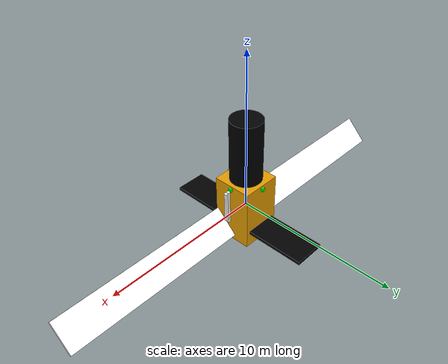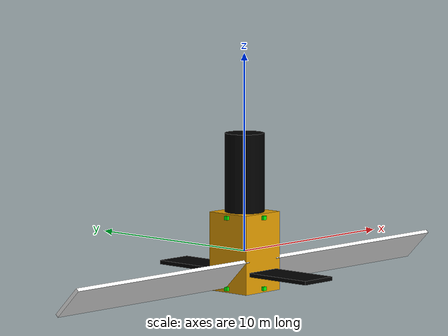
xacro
<?xml version="1.0" encoding="utf-8"?>
<robot name="satellite" xmlns:xacro="http://www.ros.org/wiki/xacro">
    <material name="blue">
        <color rgba="0 0 0.8 1"/>
    </material>

    <material name="black">
        <color rgba="0 0 0 1"/>
    </material>

    <material name="green">
        <color rgba="0 1 0 1"/>
    </material>

    <material name="white">
        <color rgba="1 1 1 1"/>
    </material>

    <xacro:property name="base_mass" value="60" />
    <xacro:property name="base_w" value="2" />
    <xacro:property name="base_l" value="2" />
    <xacro:property name="base_h" value="4" />
    <xacro:property name="arm_segment_length" value="2" />
    <xacro:property name="arm_segment_mass" value="10" />

    <!-- links -->
    <link name="base_link">
        <inertial>
            <mass value="${base_mass}"/>
            <origin xyz="0 0 0"/>
            <inertia
                ixx="${base_mass * 2.5 * 2.5 * 2/5}"
                ixy="0.0" ixz="0.0"
                iyy="${base_mass * 2.5 * 2.5 * 2/5}"
                iyz="0.0"
                izz="${base_mass * 4 * 4 * 2/5}"
            />
        </inertial>

        <visual>
            <geometry>
                <box size="2.5 2.5 4"/>
            </geometry>
        </visual>

    </link>

    <!-- antenna and communication arrays -->
    <link name="front">
        <visual>
            <geometry>
                <cylinder length="4" radius="1"/>
            </geometry>

            <origin rpy="0 0 0" xyz="0 0 2"/>
            <material name="black"/>
        </visual>

        <inertial>
            <mass value="1e-12"/>
            <origin xyz="0 0 0"/>
            <inertia ixx="1e-12" ixy="0.0" ixz="0.0" iyy="1e-12" iyz="0.0" izz="1e-12"/>
        </inertial>
    </link>

    <link name="left_array">
        <visual>
            <geometry>
                <box size="12 0.2 2"/>
            </geometry>

            <origin rpy="0.785 0 0" xyz="-6 0 0"/>
            <material name="white"/>
        </visual>

        <inertial>
            <mass value="1e-12"/>
            <origin xyz="0 0 0"/>
            <inertia ixx="1e-12" ixy="0.0" ixz="0.0" iyy="1e-12" iyz="0.0" izz="1e-12"/>
        </inertial>
    </link>

    <link name="right_array">
        <visual>
            <geometry>
                <box size="12 0.2 2"/>
            </geometry>

            <origin rpy="0.785 0 0" xyz="6 0 0"/>
            <material name="white"/>
        </visual>

        <inertial>
            <mass value="1e-12"/>
            <origin xyz="0 0 0"/>
            <inertia ixx="1e-12" ixy="0.0" ixz="0.0" iyy="1e-12" iyz="0.0" izz="1e-12"/>
        </inertial>
    </link>

    <link name="top_array">
        <visual>
            <geometry>
                <box size="2 4 0.2"/>
            </geometry>

            <origin rpy="0 0 0" xyz="0 2 0"/>
            <material name="black"/>
        </visual>

        <inertial>
            <mass value="1e-12"/>
            <origin xyz="0 0 0"/>
            <inertia ixx="1e-12" ixy="0.0" ixz="0.0" iyy="1e-12" iyz="0.0" izz="1e-12"/>
        </inertial>
    </link>

    <link name="bot_array">
        <visual>
            <geometry>
                <box size="2 4 0.2"/>
            </geometry>

            <origin rpy="0 0 0" xyz="0 -2 0"/>
            <material name="black"/>
        </visual>

        <inertial>
            <mass value="1e-12"/>
            <origin xyz="0 0 0"/>
            <inertia ixx="1e-12" ixy="0.0" ixz="0.0" iyy="1e-12" iyz="0.0" izz="1e-12"/>
        </inertial>
    </link>

    <!-- thrusters -->
    <xacro:macro name="thruster" params="name origin">
        <link name="thruster_${name}">
            <visual>
                <geometry>
                    <box size="0.2 0.2 0.2"/>
                </geometry>

                <origin rpy="0 0 0" xyz="0 0 0"/>
                <material name="green"/>
            </visual>

            <inertial>
                <mass value="0.001"/>
                <inertia ixx="1e-3" ixy="0.0" ixz="0.0" iyy="1e-3" iyz="0.0" izz="1e-3"/>
            </inertial>
        </link>

        <!-- Prismatic joints with no effort so pinocchio recognizes
            them as controllable joints.
         -->
        <joint name="base_to_thruster_${name}" type="fixed">

            <parent link="base_link"/>
            <child link="thruster_${name}"/>
            <origin xyz="${origin}"/>
        </joint>
    </xacro:macro>

    <xacro:thruster name="bot" origin="0 0 -2"/>
    <xacro:thruster name="bot_1" origin="0 -1.3 -1.8"/>
    <xacro:thruster name="bot_2" origin="-1.3 0 -1.8"/>
    <xacro:thruster name="bot_3" origin="0 1.3 -1.8"/>
    <xacro:thruster name="bot_4" origin="1.3 0 -1.8"/>

    <xacro:thruster name="top" origin="0 0 2"/>
    <xacro:thruster name="top_1" origin="0 -1.3 1.8"/>
    <xacro:thruster name="top_2" origin="-1.3 0 1.8"/>
    <xacro:thruster name="top_3" origin="0 1.3 1.8"/>
    <xacro:thruster name="top_4" origin="1.3 0 1.8"/>

    <!-- joints -->
    <joint name="base_to_front" type="fixed">
        <parent link="base_link"/>
        <child link="front"/>
        <origin xyz="0 0 2"/>
    </joint>

    <joint name="base_to_left_array" type="fixed">
        <parent link="base_link"/>
        <child link="left_array"/>
        <origin xyz="-1 -0.5 -1"/>
    </joint>

    <joint name="base_to_right_array" type="fixed">
        <parent link="base_link"/>
        <child link="right_array"/>
        <origin xyz="1 -0.5 -1"/>
    </joint>

    <joint name="base_to_top_array" type="fixed">
        <parent link="base_link"/>
        <child link="top_array"/>
        <origin xyz="0 1 -1"/>
    </joint>

    <joint name="base_to_bot_array" type="fixed">
        <parent link="base_link"/>
        <child link="bot_array"/>
        <origin xyz="0 -1 -1"/>
    </joint>

    <!-- arm -->
    <link name="arm_one">
        <visual>
            <geometry>
                <cylinder length="0.5" radius="0.1"/>
            </geometry>

            <origin rpy="0 0 0" xyz="0 0 0"/>
            <material name="white"/>
        </visual>

        <inertial>
            <mass value="0"/>
            <origin xyz="0 0 0"/>
            <inertia
                ixx="0"
                ixy="0.0" ixz="0.0"
                iyy="0"
                iyz="0.0"
                izz="0"
            />
        </inertial>
    </link>

    <link name="arm_two">
        <visual>
            <geometry>
                <cylinder length="${arm_segment_length}" radius="0.1"/>
            </geometry>

            <origin rpy="0 0 0" xyz="0 0 1"/>
            <material name="white"/>
        </visual>

        <inertial>
            <mass value="${arm_segment_mass}"/>
            <origin xyz="0 0 0"/>
            <inertia
                ixx="${1/3 * arm_segment_mass * arm_segment_length * arm_segment_length}"
                ixy="0.0" ixz="0.0"
                iyy="0"
                iyz="0.0"
                izz="${1/3 * arm_segment_mass * arm_segment_length * arm_segment_length}"
            />
        </inertial>
    </link>

    <link name="arm_three">
        <visual>
            <geometry>
                <cylinder length="${arm_segment_length}" radius="0.1"/>
            </geometry>

            <origin rpy="0 0 0" xyz="0.2 0 -1"/>
            <material name="white"/>
        </visual>

        <inertial>
            <mass value="${arm_segment_mass}"/>
            <origin xyz="0 0 0"/>
            <inertia
                ixx="${1/3 * arm_segment_mass * arm_segment_length * arm_segment_length}"
                ixy="0.0" ixz="0.0"
                iyy="0"
                iyz="0.0"
                izz="${1/3 * arm_segment_mass * arm_segment_length * arm_segment_length}"
            />
        </inertial>
    </link>

    <joint name="base_to_arm" type="revolute">
        <parent link="base_link"/>
        <child link="arm_one"/>

        <limit effort="100.0" lower="-1.57" upper="1.57" velocity="0.5"/>
        <axis xyz="1 0 0"/>
        <origin xyz="1.5 0 -0.25"/>
    </joint>

    <joint name="arm_one_to_two" type="revolute">
        <parent link="arm_one"/>
        <child link="arm_two"/>

        <limit effort="100.0" lower="0" upper="3.14" velocity="0.5"/>
        <axis xyz="0 1 0"/>
        <origin xyz="0 0 0"/>
    </joint>

    <joint name="arm_two_to_three" type="revolute">
        <parent link="arm_two"/>
        <child link="arm_three"/>

        <limit effort="100.0" lower="-1.57" upper="1.57" velocity="0.5"/>
        <axis xyz="0 1 0"/>
        <origin xyz="0 0 2"/>
    </joint>

</robot>
